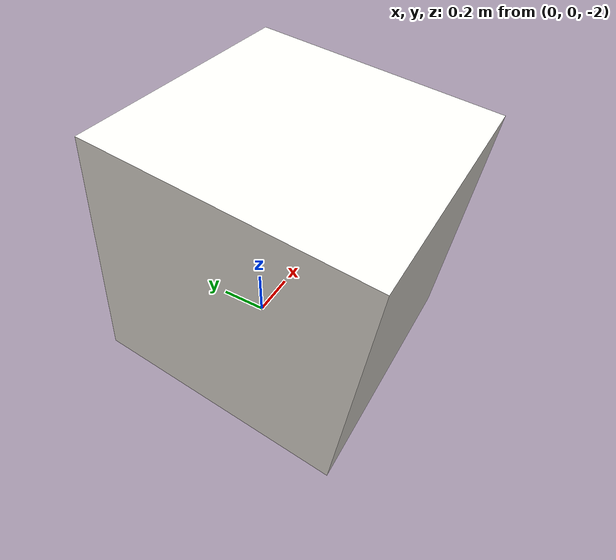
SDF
<sdf version="1.7">
 <world name="default">
  <light name="sun" type="directional">
   <pose>0 0 10 0 -0 0</pose>
   <diffuse>0.8 0.8 0.8 1</diffuse>
   <specular>0.2 0.2 0.2 1</specular>
   <attenuation>
    <range>1000</range>
    <constant>0.9</constant>
    <linear>0.01</linear>
    <quadratic>0.001</quadratic>
   </attenuation>
   <direction>-0.5 0.1 -0.9</direction>
   <spot><inner_angle>0</inner_angle><outer_angle>0</outer_angle><falloff>0</falloff></spot>
  </light>
  <model name="ground_plane">
   <static>1</static>
   <link name="link">
    <collision name="collision">
     <geometry><plane><normal>0 0 1</normal><size>100 100</size></plane></geometry>
     <surface>
      <contact><collide_bitmask>65535</collide_bitmask></contact>
      <friction><ode><mu>100</mu><mu2>50</mu2></ode></friction>
     </surface>
    </collision>
    <visual name="visual">
     <cast_shadows>0</cast_shadows>
     <geometry><plane><normal>0 0 1</normal><size>100 100</size></plane></geometry>
     <material>
      <script><uri>file://media/materials/scripts/gazebo.material</uri><name>Gazebo/Grey</name></script>
     </material>
    </visual>
   </link>
  </model>
  <gravity>0 0 -9.8</gravity>
  <magnetic_field>6e-06 2.3e-05 -4.2e-05</magnetic_field>
  <atmosphere type="adiabatic"/>
  <physics type="ode">
   <max_step_size>0.001</max_step_size>
   <real_time_factor>1</real_time_factor>
   <real_time_update_rate>1000</real_time_update_rate>
  </physics>
  <scene><ambient>0.4 0.4 0.4 1</ambient><background>0.7 0.7 0.7 1</background><shadows>1</shadows></scene>
  <audio><device>default</device></audio>
  <spherical_coordinates>
   <surface_model>EARTH_WGS84</surface_model>
   <latitude_deg>0</latitude_deg>
   <longitude_deg>0</longitude_deg>
   <elevation>0</elevation>
   <heading_deg>0</heading_deg>
  </spherical_coordinates>
  <model name="iscas_museum">
   <link name="link">
    <inertial><mass>15</mass></inertial>
    <collision name="collision">
     <pose>0 0 0 0 0 -1.57</pose>
     <geometry><mesh><uri>model://iscas_museum/meshes/ISCAS_museum.dae</uri></mesh></geometry>
    </collision>
    <visual name="visual">
     <pose>0 0 0 0 0 -1.57</pose>
     <geometry><mesh><uri>model://iscas_museum/meshes/ISCAS_museum.dae</uri></mesh></geometry>
    </visual>
   </link>
   <static>1</static>
   <pose>-0.129855 -0.19823 0 0 -0 0</pose>
  </model>
  <model name="unit_box">
   <pose>-0.01144 -0.179904 -1.48771 0.122013 -0 0</pose>
   <link name="link">
    <inertial>
     <mass>1</mass>
     <inertia>
      <ixx>0.166667</ixx>
      <ixy>0</ixy>
      <ixz>0</ixz>
      <iyy>0.166667</iyy>
      <iyz>0</iyz>
      <izz>0.166667</izz>
     </inertia>
    </inertial>
    <collision name="collision"><geometry><box><size>1 1 1.00002</size></box></geometry></collision>
    <visual name="visual">
     <geometry><box><size>1 1 1.00002</size></box></geometry>
     <material>
      <ambient>1 0.98 0.94 1</ambient>
      <diffuse>1 0.98 0.94 1</diffuse>
      <specular>0.1 0.1 0.1 1</specular>
      <emissive>0 0 0 1</emissive>
     </material>
    </visual>
   </link>
  </model>
 </world>
</sdf>
